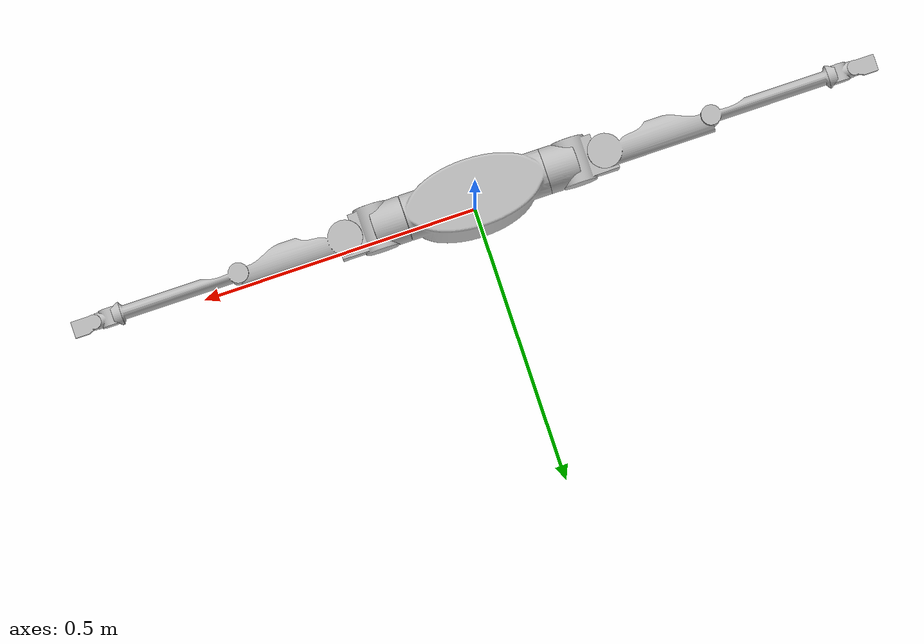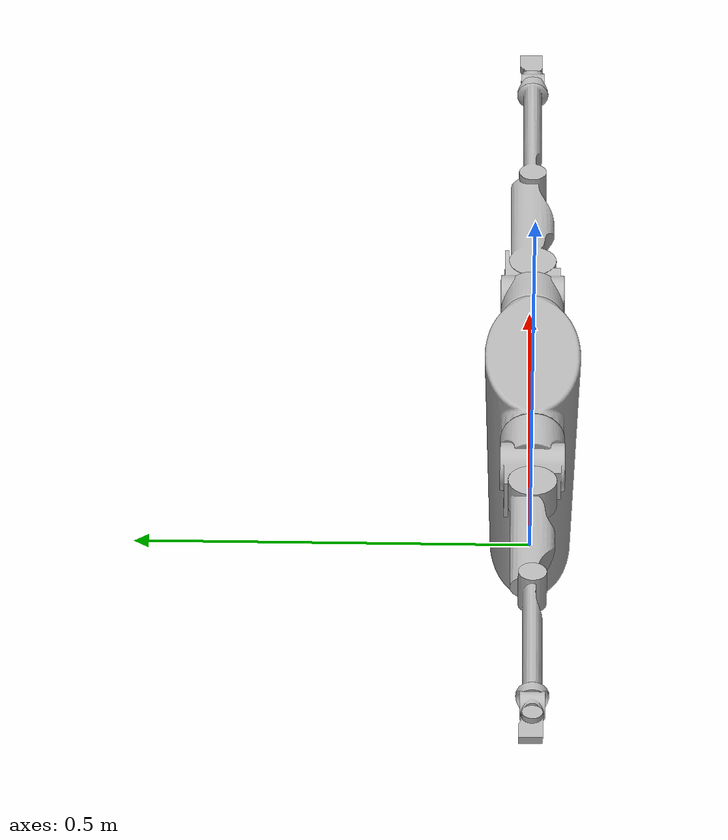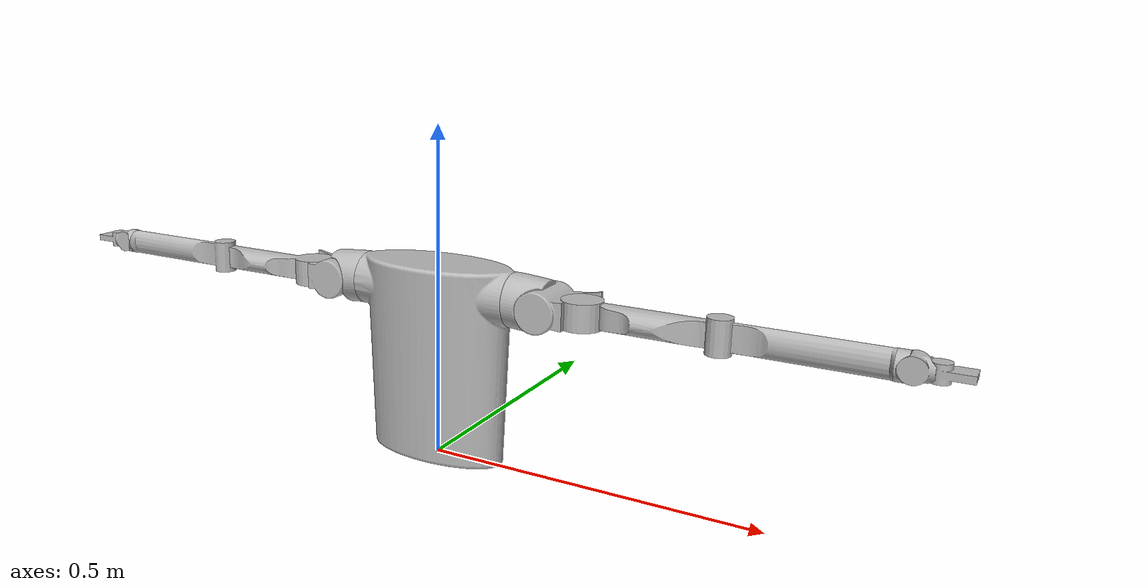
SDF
<sdf version='1.6'>
  <model name='lita_converted'>
    <link name='upper_body_link'>
      <pose frame=''>0 0 0 0 -0 0</pose>
      <inertial>
        <pose frame=''>-4e-06 -0 0.15913 0 -0 0</pose>
        <mass>26.766</mass>
        <inertia>
          <ixx>10</ixx>
          <ixy>10</ixy>
          <ixz>10</ixz>
          <iyy>10</iyy>
          <iyz>10</iyz>
          <izz>10</izz>
        </inertia>
      </inertial>
      <collision name='upper_body_link_collision'>
        <pose frame=''>0 0 0 0 -0 0</pose>
        <geometry>
          <mesh>
            <scale>1 1 1</scale>
            <uri>model://lita_converted/meshes/upper_body_link.STL</uri>
          </mesh>
        </geometry>
      </collision>
      <visual name='upper_body_link_visual'>
        <pose frame=''>0 0 0 0 -0 0</pose>
        <geometry>
          <mesh>
            <scale>1 1 1</scale>
            <uri>model://lita_converted/meshes/upper_body_link.STL</uri>
          </mesh>
        </geometry>
      </visual>
    </link>
    <joint name='fixed' type='fixed'>
      <child>upper_body_link</child>
      <parent>world</parent>
    </joint>
    <link name='l_shoulder_roll_link'>
      <pose frame=''>0.125 0 0.26 3.14159 -1.57079 3.14159</pose>
      <inertial>
        <pose frame=''>0.003368 -0 -0.015946 0 -0 0</pose>
        <mass>0.63417</mass>
        <inertia>
          <ixx>0.000315</ixx>
          <ixy>0</ixy>
          <ixz>-5.2e-05</ixz>
          <iyy>0.000373</iyy>
          <iyz>0</iyz>
          <izz>0.000525</izz>
        </inertia>
      </inertial>
      <collision name='l_shoulder_roll_link_collision'>
        <pose frame=''>0 0 0 0 -0 0</pose>
        <geometry>
          <mesh>
            <scale>1 1 1</scale>
            <uri>model://lita_converted/meshes/l_shoulder_roll_link.STL</uri>
          </mesh>
        </geometry>
      </collision>
      <visual name='l_shoulder_roll_link_visual'>
        <pose frame=''>0 0 0 0 -0 0</pose>
        <geometry>
          <mesh>
            <scale>1 1 1</scale>
            <uri>model://lita_converted/meshes/l_shoulder_roll_link.STL</uri>
          </mesh>
        </geometry>
      </visual>
    </link>
    <joint name='l_shoulder_roll' type='revolute'>
      <child>l_shoulder_roll_link</child>
      <parent>upper_body_link</parent>
      <axis>
        <xyz>1 0 4e-06</xyz>
        <limit>
          <lower>-1e+16</lower>
          <upper>1e+16</upper>
        </limit>
        <dynamics>
          <damping>1</damping>
          <friction>0.1</friction>
          <spring_reference>0</spring_reference>
          <spring_stiffness>0</spring_stiffness>
        </dynamics>
        <use_parent_model_frame>1</use_parent_model_frame>
      </axis>
    </joint>
    <link name='l_shoulder_pitch_link'>
      <pose frame=''>0.177049 0 0.256287 1.5708 -0 0</pose>
      <inertial>
        <pose frame=''>0.003299 0 -0.000981 0 -0 0</pose>
        <mass>1.0724</mass>
        <inertia>
          <ixx>0.000841</ixx>
          <ixy>0</ixy>
          <ixz>-5.4e-05</ixz>
          <iyy>0.000973</iyy>
          <iyz>0</iyz>
          <izz>0.000606</izz>
        </inertia>
      </inertial>
      <collision name='l_shoulder_pitch_link_collision'>
        <pose frame=''>0 0 0 0 -0 0</pose>
        <geometry>
          <mesh>
            <scale>1 1 1</scale>
            <uri>model://lita_converted/meshes/l_shoulder_pitch_link.STL</uri>
          </mesh>
        </geometry>
      </collision>
      <visual name='l_shoulder_pitch_link_visual'>
        <pose frame=''>0 0 0 0 -0 0</pose>
        <geometry>
          <mesh>
            <scale>1 1 1</scale>
            <uri>model://lita_converted/meshes/l_shoulder_pitch_link.STL</uri>
          </mesh>
        </geometry>
      </visual>
    </link>
    <joint name='l_shoulder_pitch' type='revolute'>
      <child>l_shoulder_pitch_link</child>
      <parent>l_shoulder_roll_link</parent>
      <axis>
        <xyz>0 1 4e-06</xyz>
        <limit>
          <lower>-0.6981</lower>
          <upper>1.7104</upper>
          <effort>50000</effort>
          <velocity>500</velocity>
        </limit>
        <dynamics>
          <damping>0.1</damping>
          <friction>0.1</friction>
          <spring_reference>0</spring_reference>
          <spring_stiffness>0</spring_stiffness>
        </dynamics>
        <use_parent_model_frame>1</use_parent_model_frame>
      </axis>
    </joint>
    <link name='l_shoulder_yaw_link'>
      <pose frame=''>0.232049 0 0.256287 -3.14159 0 -0</pose>
      <inertial>
        <pose frame=''>0.065121 -0.002097 0 0 -0 0</pose>
        <mass>1.3826</mass>
        <inertia>
          <ixx>0.000398</ixx>
          <ixy>-0.000132</ixy>
          <ixz>0</ixz>
          <iyy>0.005026</iyy>
          <iyz>0</iyz>
          <izz>0.005143</izz>
        </inertia>
      </inertial>
      <collision name='l_shoulder_yaw_link_collision'>
        <pose frame=''>0 0 0 0 -0 0</pose>
        <geometry>
          <mesh>
            <scale>1 1 1</scale>
            <uri>model://lita_converted/meshes/l_shoulder_yaw_link.STL</uri>
          </mesh>
        </geometry>
      </collision>
      <visual name='l_shoulder_yaw_link_visual'>
        <pose frame=''>0 0 0 0 -0 0</pose>
        <geometry>
          <mesh>
            <scale>1 1 1</scale>
            <uri>model://lita_converted/meshes/l_shoulder_yaw_link.STL</uri>
          </mesh>
        </geometry>
      </visual>
    </link>
    <joint name='l_shoulder_yaw' type='revolute'>
      <child>l_shoulder_yaw_link</child>
      <parent>l_shoulder_pitch_link</parent>
      <axis>
        <xyz>-0 7e-06 -1</xyz>
        <limit>
          <lower>-0.1396</lower>
          <upper>1.6231</upper>
          <effort>50000</effort>
          <velocity>500</velocity>
        </limit>
        <dynamics>
          <damping>0.1</damping>
          <friction>0.1</friction>
          <spring_reference>0</spring_reference>
          <spring_stiffness>0</spring_stiffness>
        </dynamics>
        <use_parent_model_frame>1</use_parent_model_frame>
      </axis>
    </joint>
    <link name='l_elbow_link'>
      <pose frame=''>0.422349 -0 0.256287 -3.14159 -0 -0</pose>
      <inertial>
        <pose frame=''>0.088184 -0.00035 -0 0 -0 0</pose>
        <mass>0.81599</mass>
        <inertia>
          <ixx>0.000143</ixx>
          <ixy>1.5e-05</ixy>
          <ixz>0</ixz>
          <iyy>0.004114</iyy>
          <iyz>0</iyz>
          <izz>0.004046</izz>
        </inertia>
      </inertial>
      <collision name='l_elbow_link_collision'>
        <pose frame=''>0 0 0 0 -0 0</pose>
        <geometry>
          <mesh>
            <scale>1 1 1</scale>
            <uri>model://lita_converted/meshes/l_elbow_link.STL</uri>
          </mesh>
        </geometry>
      </collision>
      <visual name='l_elbow_link_visual'>
        <pose frame=''>0 0 0 0 -0 0</pose>
        <geometry>
          <mesh>
            <scale>1 1 1</scale>
            <uri>model://lita_converted/meshes/l_elbow_link.STL</uri>
          </mesh>
        </geometry>
      </visual>
    </link>
    <joint name='l_elbow' type='revolute'>
      <child>l_elbow_link</child>
      <parent>l_shoulder_yaw_link</parent>
      <axis>
        <xyz>0 7e-06 -1</xyz>
        <limit>
          <lower>-0.7853</lower>
          <upper>2.4085</upper>
          <effort>50000</effort>
          <velocity>500</velocity>
        </limit>
        <dynamics>
          <damping>0.1</damping>
          <friction>0.1</friction>
          <spring_reference>0</spring_reference>
          <spring_stiffness>0</spring_stiffness>
        </dynamics>
        <use_parent_model_frame>1</use_parent_model_frame>
      </axis>
    </joint>
    <link name='l_wrist_roll_link'>
      <pose frame=''>0.632349 -0 0.256287 2.03445 -1.57079 -2.03444</pose>
      <inertial>
        <pose frame=''>-0 0 -0.004271 0 -0 0</pose>
        <mass>0.033212</mass>
        <inertia>
          <ixx>3e-06</ixx>
          <ixy>0</ixy>
          <ixz>0</ixz>
          <iyy>6e-06</iyy>
          <iyz>0</iyz>
          <izz>8e-06</izz>
        </inertia>
      </inertial>
      <collision name='l_wrist_roll_link_collision'>
        <pose frame=''>0 0 0 0 -0 0</pose>
        <geometry>
          <mesh>
            <scale>1 1 1</scale>
            <uri>model://lita_converted/meshes/l_wrist_roll_link.STL</uri>
          </mesh>
        </geometry>
      </collision>
      <visual name='l_wrist_roll_link_visual'>
        <pose frame=''>0 0 0 0 -0 0</pose>
        <geometry>
          <mesh>
            <scale>1 1 1</scale>
            <uri>model://lita_converted/meshes/l_wrist_roll_link.STL</uri>
          </mesh>
        </geometry>
      </visual>
    </link>
    <joint name='l_wrist_roll' type='revolute'>
      <child>l_wrist_roll_link</child>
      <parent>l_elbow_link</parent>
      <axis>
        <xyz>1 7e-06 4e-06</xyz>
        <limit>
          <lower>-1e+16</lower>
          <upper>1e+16</upper>
        </limit>
        <dynamics>
          <damping>0.1</damping>
          <friction>0.1</friction>
          <spring_reference>0</spring_reference>
          <spring_stiffness>0</spring_stiffness>
        </dynamics>
        <use_parent_model_frame>1</use_parent_model_frame>
      </axis>
    </joint>
    <link name='l_wrist_pitch_link'>
      <pose frame=''>0.652349 0 0.256287 1.57081 -0 7e-06</pose>
      <inertial>
        <pose frame=''>0.000979 -0 -0 0 -0 0</pose>
        <mass>0.13385</mass>
        <inertia>
          <ixx>2.1e-05</ixx>
          <ixy>0</ixy>
          <ixz>0</ixz>
          <iyy>2.2e-05</iyy>
          <iyz>0</iyz>
          <izz>2.2e-05</izz>
        </inertia>
      </inertial>
      <collision name='l_wrist_pitch_link_collision'>
        <pose frame=''>0 0 0 0 -0 0</pose>
        <geometry>
          <mesh>
            <scale>1 1 1</scale>
            <uri>model://lita_converted/meshes/l_wrist_pitch_link.STL</uri>
          </mesh>
        </geometry>
      </collision>
      <visual name='l_wrist_pitch_link_visual'>
        <pose frame=''>0 0 0 0 -0 0</pose>
        <geometry>
          <mesh>
            <scale>1 1 1</scale>
            <uri>model://lita_converted/meshes/l_wrist_pitch_link.STL</uri>
          </mesh>
        </geometry>
      </visual>
    </link>
    <joint name='l_wrist_pitch' type='revolute'>
      <child>l_wrist_pitch_link</child>
      <parent>l_wrist_roll_link</parent>
      <axis>
        <xyz>-7e-06 1 1.1e-05</xyz>
        <limit>
          <lower>-0.6981</lower>
          <upper>0.6981</upper>
          <effort>50000</effort>
          <velocity>500</velocity>
        </limit>
        <dynamics>
          <damping>0.1</damping>
          <friction>0.1</friction>
          <spring_reference>0</spring_reference>
          <spring_stiffness>0</spring_stiffness>
        </dynamics>
        <use_parent_model_frame>1</use_parent_model_frame>
      </axis>
    </joint>
    <link name='l_wrist_yaw_link'>
      <pose frame=''>0.680349 0 0.256287 -3.14158 -0 7e-06</pose>
      <inertial>
        <pose frame=''>0.009683 -0.000791 0 0 -0 0</pose>
        <mass>0.089949</mass>
        <inertia>
          <ixx>8e-06</ixx>
          <ixy>-1e-06</ixy>
          <ixz>0</ixz>
          <iyy>2e-05</iyy>
          <iyz>0</iyz>
          <izz>2.2e-05</izz>
        </inertia>
      </inertial>
      <collision name='l_wrist_yaw_link_collision'>
        <pose frame=''>0 0 0 0 -0 0</pose>
        <geometry>
          <mesh>
            <scale>1 1 1</scale>
            <uri>model://lita_converted/meshes/l_wrist_yaw_link.STL</uri>
          </mesh>
        </geometry>
      </collision>
      <visual name='l_wrist_yaw_link_visual'>
        <pose frame=''>0 0 0 0 -0 0</pose>
        <geometry>
          <mesh>
            <scale>1 1 1</scale>
            <uri>model://lita_converted/meshes/l_wrist_yaw_link.STL</uri>
          </mesh>
        </geometry>
      </visual>
    </link>
    <joint name='l_wrist_yaw' type='revolute'>
      <child>l_wrist_yaw_link</child>
      <parent>l_wrist_pitch_link</parent>
      <axis>
        <xyz>-0 1.5e-05 -1</xyz>
        <limit>
          <lower>-0.3141</lower>
          <upper>0.3141</upper>
          <effort>50000</effort>
          <velocity>500</velocity>
        </limit>
        <dynamics>
          <damping>0.1</damping>
          <friction>0.1</friction>
          <spring_reference>0</spring_reference>
          <spring_stiffness>0</spring_stiffness>
        </dynamics>
        <use_parent_model_frame>1</use_parent_model_frame>
      </axis>
    </joint>
    <link name='r_shoulder_roll_link'>
      <pose frame=''>-0.125 0 0.26 3.14159 -1.57079 3.14159</pose>
      <inertial>
        <pose frame=''>0.003368 0 0.015946 0 -0 0</pose>
        <mass>0.63417</mass>
        <inertia>
          <ixx>0.000315</ixx>
          <ixy>0</ixy>
          <ixz>5.2e-05</ixz>
          <iyy>0.000373</iyy>
          <iyz>0</iyz>
          <izz>0.000525</izz>
        </inertia>
      </inertial>
      <collision name='r_shoulder_roll_link_collision'>
        <pose frame=''>0 0 0 0 -0 0</pose>
        <geometry>
          <mesh>
            <scale>1 1 1</scale>
            <uri>model://lita_converted/meshes/r_shoulder_roll_link.STL</uri>
          </mesh>
        </geometry>
      </collision>
      <visual name='r_shoulder_roll_link_visual'>
        <pose frame=''>0 0 0 0 -0 0</pose>
        <geometry>
          <mesh>
            <scale>1 1 1</scale>
            <uri>model://lita_converted/meshes/r_shoulder_roll_link.STL</uri>
          </mesh>
        </geometry>
      </visual>
    </link>
    <joint name='r_shoulder_roll' type='revolute'>
      <child>r_shoulder_roll_link</child>
      <parent>upper_body_link</parent>
      <axis>
        <xyz>1 0 4e-06</xyz>
        <limit>
          <lower>-1e+16</lower>
          <upper>1e+16</upper>
        </limit>
        <dynamics>
          <damping>0.1</damping>
          <friction>0.1</friction>
          <spring_reference>0</spring_reference>
          <spring_stiffness>0</spring_stiffness>
        </dynamics>
        <use_parent_model_frame>1</use_parent_model_frame>
      </axis>
    </joint>
    <link name='r_shoulder_pitch_link'>
      <pose frame=''>-0.177049 0 0.256287 1.57079 7e-06 3.14159</pose>
      <inertial>
        <pose frame=''>0.003299 -0 0.000981 0 -0 0</pose>
        <mass>1.0724</mass>
        <inertia>
          <ixx>0.000841</ixx>
          <ixy>0</ixy>
          <ixz>5.4e-05</ixz>
          <iyy>0.000973</iyy>
          <iyz>0</iyz>
          <izz>0.000606</izz>
        </inertia>
      </inertial>
      <collision name='r_shoulder_pitch_link_collision'>
        <pose frame=''>0 0 0 0 -0 0</pose>
        <geometry>
          <mesh>
            <scale>1 1 1</scale>
            <uri>model://lita_converted/meshes/r_shoulder_pitch_link.STL</uri>
          </mesh>
        </geometry>
      </collision>
      <visual name='r_shoulder_pitch_link_visual'>
        <pose frame=''>0 0 0 0 -0 0</pose>
        <geometry>
          <mesh>
            <scale>1 1 1</scale>
            <uri>model://lita_converted/meshes/r_shoulder_pitch_link.STL</uri>
          </mesh>
        </geometry>
      </visual>
    </link>
    <joint name='r_shoulder_pitch' type='revolute'>
      <child>r_shoulder_pitch_link</child>
      <parent>r_shoulder_roll_link</parent>
      <axis>
        <xyz>0 -1 -4e-06</xyz>
        <limit>
          <lower>-0.6981</lower>
          <upper>1.7104</upper>
          <effort>50000</effort>
          <velocity>500</velocity>
        </limit>
        <dynamics>
          <damping>0.1</damping>
          <friction>0.1</friction>
          <spring_reference>0</spring_reference>
          <spring_stiffness>0</spring_stiffness>
        </dynamics>
        <use_parent_model_frame>1</use_parent_model_frame>
      </axis>
    </joint>
    <link name='r_shoulder_yaw_link'>
      <pose frame=''>-0.232049 0 0.256286 -7e-06 7e-06 -3.14159</pose>
      <inertial>
        <pose frame=''>0.065121 -0.002097 0 0 -0 0</pose>
        <mass>1.3826</mass>
        <inertia>
          <ixx>0.000398</ixx>
          <ixy>-0.000132</ixy>
          <ixz>0</ixz>
          <iyy>0.005026</iyy>
          <iyz>0</iyz>
          <izz>0.005143</izz>
        </inertia>
      </inertial>
      <collision name='r_shoulder_yaw_link_collision'>
        <pose frame=''>0 0 0 0 -0 0</pose>
        <geometry>
          <mesh>
            <scale>1 1 1</scale>
            <uri>model://lita_converted/meshes/r_shoulder_yaw_link.STL</uri>
          </mesh>
        </geometry>
      </collision>
      <visual name='r_shoulder_yaw_link_visual'>
        <pose frame=''>0 0 0 0 -0 0</pose>
        <geometry>
          <mesh>
            <scale>1 1 1</scale>
            <uri>model://lita_converted/meshes/r_shoulder_yaw_link.STL</uri>
          </mesh>
        </geometry>
      </visual>
    </link>
    <joint name='r_shoulder_yaw' type='revolute'>
      <child>r_shoulder_yaw_link</child>
      <parent>r_shoulder_pitch_link</parent>
      <axis>
        <xyz>-7e-06 -7e-06 1</xyz>
        <limit>
          <lower>-0.1396</lower>
          <upper>1.6231</upper>
          <effort>50000</effort>
          <velocity>500</velocity>
        </limit>
        <dynamics>
          <damping>0.1</damping>
          <friction>0.1</friction>
          <spring_reference>0</spring_reference>
          <spring_stiffness>0</spring_stiffness>
        </dynamics>
        <use_parent_model_frame>1</use_parent_model_frame>
      </axis>
    </joint>
    <link name='r_elbow_link'>
      <pose frame=''>-0.422349 -0 0.256285 -7e-06 7e-06 -3.14159</pose>
      <inertial>
        <pose frame=''>0.088184 -0.00035 -0 0 -0 0</pose>
        <mass>0.81599</mass>
        <inertia>
          <ixx>0.000143</ixx>
          <ixy>1.5e-05</ixy>
          <ixz>0</ixz>
          <iyy>0.004114</iyy>
          <iyz>0</iyz>
          <izz>0.004046</izz>
        </inertia>
      </inertial>
      <collision name='r_elbow_link_collision'>
        <pose frame=''>0 0 0 0 -0 0</pose>
        <geometry>
          <mesh>
            <scale>1 1 1</scale>
            <uri>model://lita_converted/meshes/r_elbow_link.STL</uri>
          </mesh>
        </geometry>
      </collision>
      <visual name='r_elbow_link_visual'>
        <pose frame=''>0 0 0 0 -0 0</pose>
        <geometry>
          <mesh>
            <scale>1 1 1</scale>
            <uri>model://lita_converted/meshes/r_elbow_link.STL</uri>
          </mesh>
        </geometry>
      </visual>
    </link>
    <joint name='r_elbow' type='revolute'>
      <child>r_elbow_link</child>
      <parent>r_shoulder_yaw_link</parent>
      <axis>
        <xyz>-7e-06 -7e-06 1</xyz>
        <limit>
          <lower>-0.7853</lower>
          <upper>2.4085</upper>
          <effort>50000</effort>
          <velocity>500</velocity>
        </limit>
        <dynamics>
          <damping>0.1</damping>
          <friction>0.1</friction>
          <spring_reference>0</spring_reference>
          <spring_stiffness>0</spring_stiffness>
        </dynamics>
        <use_parent_model_frame>1</use_parent_model_frame>
      </axis>
    </joint>
    <link name='r_wrist_roll_link'>
      <pose frame=''>-0.632349 -0 0.256283 -2.55359 1.57078 0.588003</pose>
      <inertial>
        <pose frame=''>-0 -0 0.004271 0 -0 0</pose>
        <mass>0.033212</mass>
        <inertia>
          <ixx>3e-06</ixx>
          <ixy>0</ixy>
          <ixz>0</ixz>
          <iyy>6e-06</iyy>
          <iyz>0</iyz>
          <izz>8e-06</izz>
        </inertia>
      </inertial>
      <collision name='r_wrist_roll_link_collision'>
        <pose frame=''>0 0 0 0 -0 0</pose>
        <geometry>
          <mesh>
            <scale>1 1 1</scale>
            <uri>model://lita_converted/meshes/r_wrist_roll_link.STL</uri>
          </mesh>
        </geometry>
      </collision>
      <visual name='r_wrist_roll_link_visual'>
        <pose frame=''>0 0 0 0 -0 0</pose>
        <geometry>
          <mesh>
            <scale>1 1 1</scale>
            <uri>model://lita_converted/meshes/r_wrist_roll_link.STL</uri>
          </mesh>
        </geometry>
      </visual>
    </link>
    <joint name='r_wrist_roll' type='revolute'>
      <child>r_wrist_roll_link</child>
      <parent>r_elbow_link</parent>
      <axis>
        <xyz>1 -0 1.1e-05</xyz>
        <limit>
          <lower>-1e+16</lower>
          <upper>1e+16</upper>
        </limit>
        <dynamics>
          <damping>0.1</damping>
          <friction>0.1</friction>
          <spring_reference>0</spring_reference>
          <spring_stiffness>0</spring_stiffness>
        </dynamics>
        <use_parent_model_frame>1</use_parent_model_frame>
      </axis>
    </joint>
    <link name='r_wrist_pitch_link'>
      <pose frame=''>-0.652349 0 0.256283 1.57079 7e-06 -3.14159</pose>
      <inertial>
        <pose frame=''>0.000979 -0 -0 0 -0 0</pose>
        <mass>0.13385</mass>
        <inertia>
          <ixx>2.1e-05</ixx>
          <ixy>0</ixy>
          <ixz>0</ixz>
          <iyy>2.2e-05</iyy>
          <iyz>0</iyz>
          <izz>2.2e-05</izz>
        </inertia>
      </inertial>
      <collision name='r_wrist_pitch_link_collision'>
        <pose frame=''>0 0 0 0 -0 0</pose>
        <geometry>
          <mesh>
            <scale>1 1 1</scale>
            <uri>model://lita_converted/meshes/r_wrist_pitch_link.STL</uri>
          </mesh>
        </geometry>
      </collision>
      <visual name='r_wrist_pitch_link_visual'>
        <pose frame=''>0 0 0 0 -0 0</pose>
        <geometry>
          <mesh>
            <scale>1 1 1</scale>
            <uri>model://lita_converted/meshes/r_wrist_pitch_link.STL</uri>
          </mesh>
        </geometry>
      </visual>
    </link>
    <joint name='r_wrist_pitch' type='revolute'>
      <child>r_wrist_pitch_link</child>
      <parent>r_wrist_roll_link</parent>
      <axis>
        <xyz>0 -1 -4e-06</xyz>
        <limit>
          <lower>-0.6981</lower>
          <upper>0.6981</upper>
          <effort>50000</effort>
          <velocity>500</velocity>
        </limit>
        <dynamics>
          <damping>0.1</damping>
          <friction>0.1</friction>
          <spring_reference>0</spring_reference>
          <spring_stiffness>0</spring_stiffness>
        </dynamics>
        <use_parent_model_frame>1</use_parent_model_frame>
      </axis>
    </joint>
    <link name='r_wrist_yaw_link'>
      <pose frame=''>-0.680349 0 0.256283 -7e-06 7e-06 -3.14159</pose>
      <inertial>
        <pose frame=''>0.009683 -0.000791 0 0 -0 0</pose>
        <mass>0.089949</mass>
        <inertia>
          <ixx>8e-06</ixx>
          <ixy>-1e-06</ixy>
          <ixz>0</ixz>
          <iyy>2e-05</iyy>
          <iyz>0</iyz>
          <izz>2.2e-05</izz>
        </inertia>
      </inertial>
      <collision name='r_wrist_yaw_link_collision'>
        <pose frame=''>0 0 0 0 -0 0</pose>
        <geometry>
          <mesh>
            <scale>1 1 1</scale>
            <uri>model://lita_converted/meshes/r_wrist_yaw_link.STL</uri>
          </mesh>
        </geometry>
      </collision>
      <visual name='r_wrist_yaw_link_visual'>
        <pose frame=''>0 0 0 0 -0 0</pose>
        <geometry>
          <mesh>
            <scale>1 1 1</scale>
            <uri>model://lita_converted/meshes/r_wrist_yaw_link.STL</uri>
          </mesh>
        </geometry>
      </visual>
    </link>
    <joint name='r_wrist_yaw' type='revolute'>
      <child>r_wrist_yaw_link</child>
      <parent>r_wrist_pitch_link</parent>
      <axis>
        <xyz>-7e-06 -7e-06 1</xyz>
        <limit>
          <lower>-0.3141</lower>
          <upper>0.3141</upper>
          <effort>50000</effort>
          <velocity>500</velocity>
        </limit>
        <dynamics>
          <damping>0.1</damping>
          <friction>0.1</friction>
          <spring_reference>0</spring_reference>
          <spring_stiffness>0</spring_stiffness>
        </dynamics>
        <use_parent_model_frame>1</use_parent_model_frame>
      </axis>
    </joint>
  </model>
</sdf>
